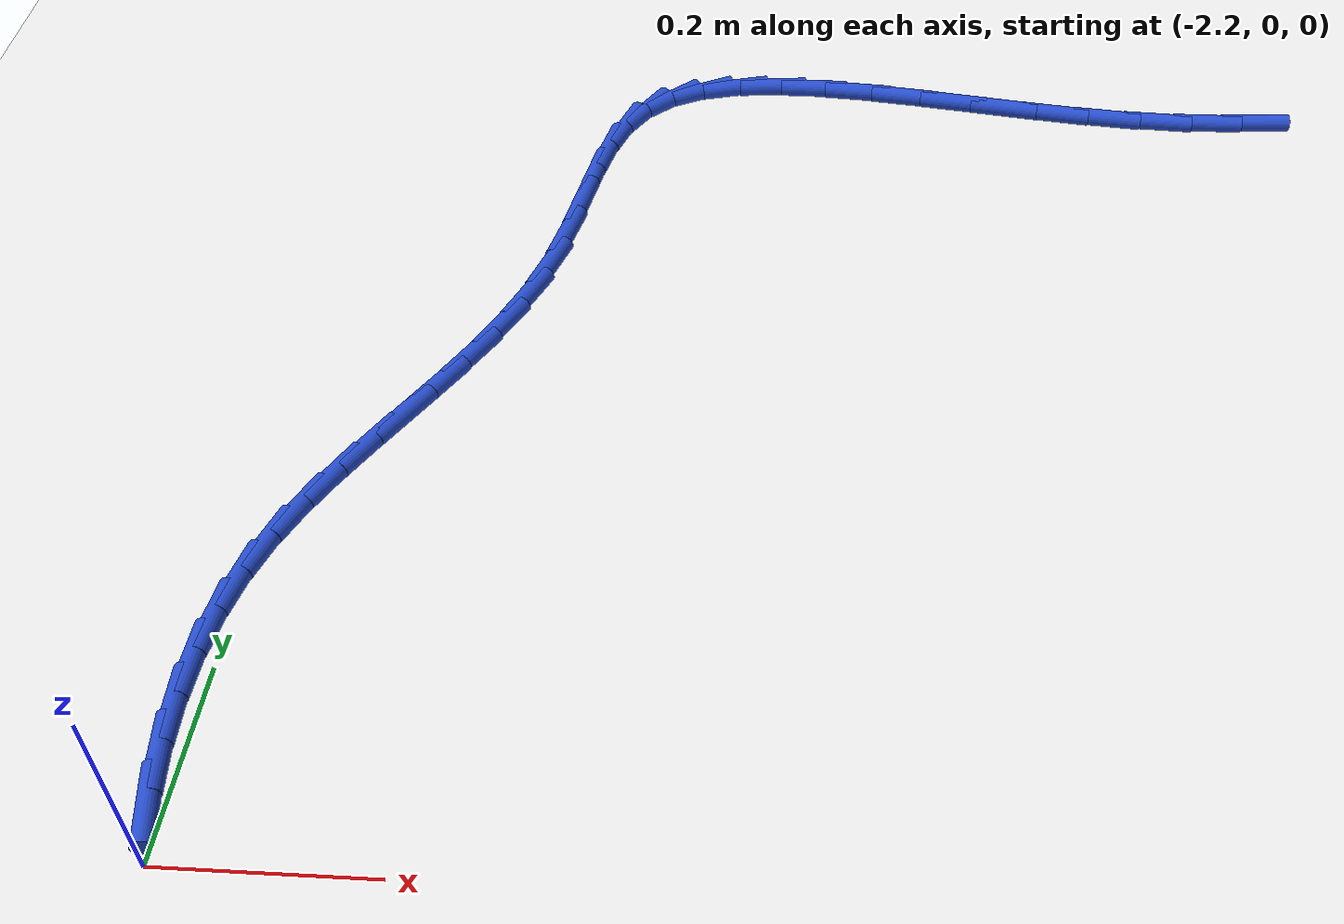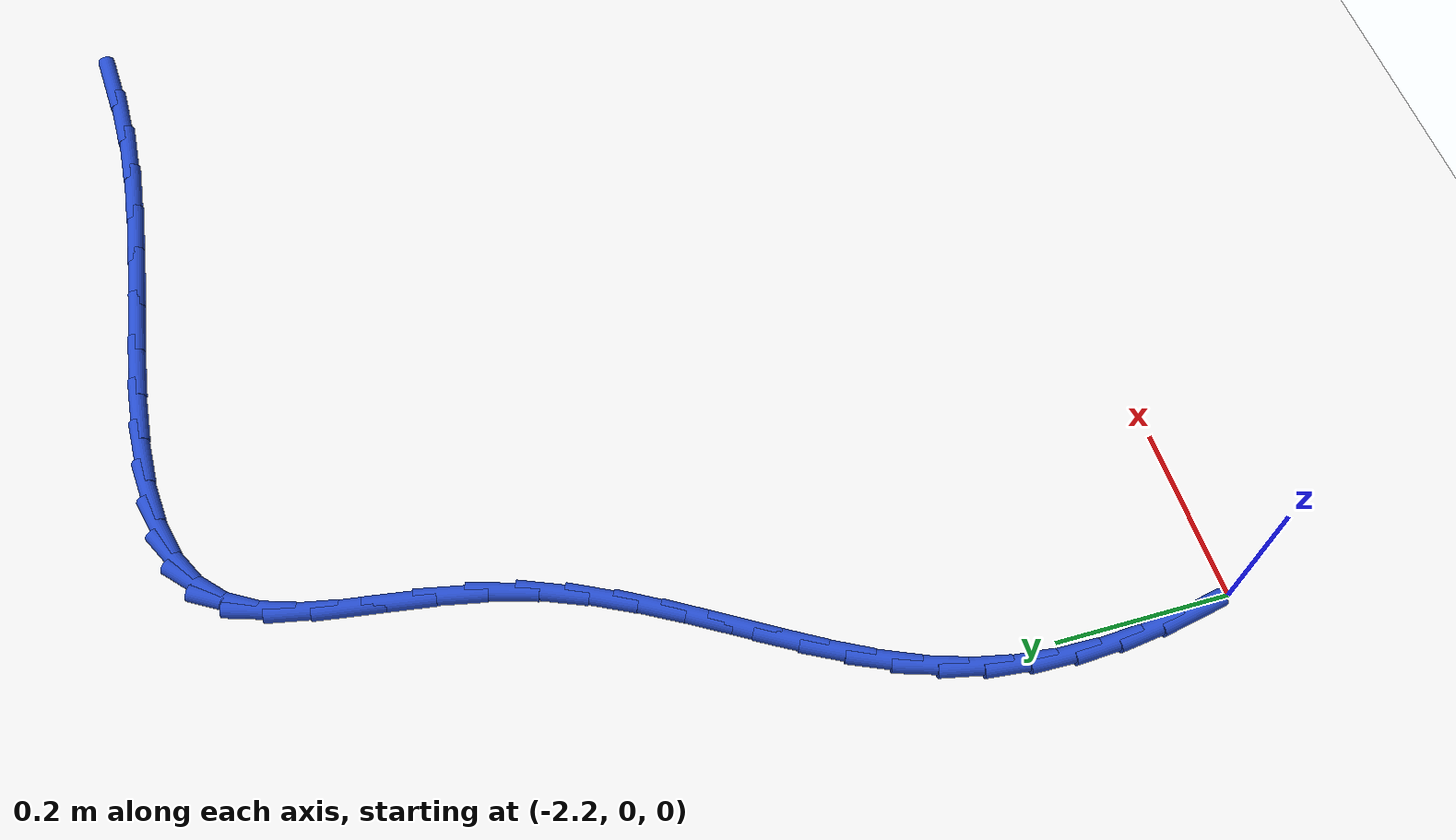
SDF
<sdf version="1.6">
 <world name="default">
  <model name="ground_plane">
   <static>1</static>
   <link name="link">
    <collision name="collision">
     <geometry><plane><normal>0 0 1</normal><size>100 100</size></plane></geometry>
     <surface><friction><ode><mu>100</mu><mu2>50</mu2></ode></friction></surface>
    </collision>
    <visual name="visual">
     <cast_shadows>0</cast_shadows>
     <geometry><plane><normal>0 0 1</normal><size>100 100</size></plane></geometry>
     <material>
      <script><uri>file://media/materials/scripts/gazebo.material</uri><name>Gazebo/WhiteGlow</name></script>
     </material>
    </visual>
   </link>
  </model>
  <model name="line">
   <link name="link_35">
    <pose>-1.183467874514601 1.0608266641390838 0.01 0 1.57 0.07121172890424289</pose>
    <collision name="collision">
     <geometry><cylinder><radius>0.01</radius><length>0.08</length></cylinder></geometry>
    </collision>
    <visual name="visual">
     <material>
      <script><name>Gazebo/Blue</name><uri>file://media/materials/scripts/gazebo.material</uri></script>
     </material>
     <geometry><cylinder><radius>0.01</radius><length>0.08</length></cylinder></geometry>
    </visual>
   </link>
   <link name="link_36">
    <pose>-1.2406983604151853 1.0567442792165291 0.01 0 1.57 0.01288337713004159</pose>
    <collision name="collision">
     <geometry><cylinder><radius>0.01</radius><length>0.08</length></cylinder></geometry>
    </collision>
    <visual name="visual">
     <material>
      <script><name>Gazebo/Blue</name><uri>file://media/materials/scripts/gazebo.material</uri></script>
     </material>
     <geometry><cylinder><radius>0.01</radius><length>0.08</length></cylinder></geometry>
    </visual>
   </link>
   <link name="link_37">
    <pose>-1.299802297958043 1.0559827787671894 0.01 0 1.57 -0.050339240659916615</pose>
    <collision name="collision">
     <geometry><cylinder><radius>0.01</radius><length>0.08</length></cylinder></geometry>
    </collision>
    <visual name="visual">
     <material>
      <script><name>Gazebo/Blue</name><uri>file://media/materials/scripts/gazebo.material</uri></script>
     </material>
     <geometry><cylinder><radius>0.01</radius><length>0.08</length></cylinder></geometry>
    </visual>
   </link>
   <link name="link_38">
    <pose>-1.360506339075548 1.0590411578893697 0.01 0 1.57 -0.09579042090000613</pose>
    <collision name="collision">
     <geometry><cylinder><radius>0.01</radius><length>0.08</length></cylinder></geometry>
    </collision>
    <visual name="visual">
     <material>
      <script><name>Gazebo/Blue</name><uri>file://media/materials/scripts/gazebo.material</uri></script>
     </material>
     <geometry><cylinder><radius>0.01</radius><length>0.08</length></cylinder></geometry>
    </visual>
   </link>
   <link name="link_39">
    <pose>-1.4220820003503705 1.0649576235908578 0.01 0 1.57 -0.12387242446322284</pose>
    <collision name="collision">
     <geometry><cylinder><radius>0.01</radius><length>0.08</length></cylinder></geometry>
    </collision>
    <visual name="visual">
     <material>
      <script><name>Gazebo/Blue</name><uri>file://media/materials/scripts/gazebo.material</uri></script>
     </material>
     <geometry><cylinder><radius>0.01</radius><length>0.08</length></cylinder></geometry>
    </visual>
   </link>
   <link name="link_40">
    <pose>-1.4837592572646294 1.0726370538708583 0.01 0 1.57 -0.13597644317732396</pose>
    <collision name="collision">
     <geometry><cylinder><radius>0.01</radius><length>0.08</length></cylinder></geometry>
    </collision>
    <visual name="visual">
     <material>
      <script><name>Gazebo/Blue</name><uri>file://media/materials/scripts/gazebo.material</uri></script>
     </material>
     <geometry><cylinder><radius>0.01</radius><length>0.08</length></cylinder></geometry>
    </visual>
   </link>
   <link name="link_41">
    <pose>-1.5447680853004475 1.080984326728577 0.01 0 1.57 -0.13217672540186018</pose>
    <collision name="collision">
     <geometry><cylinder><radius>0.01</radius><length>0.08</length></cylinder></geometry>
    </collision>
    <visual name="visual">
     <material>
      <script><name>Gazebo/Blue</name><uri>file://media/materials/scripts/gazebo.material</uri></script>
     </material>
     <geometry><cylinder><radius>0.01</radius><length>0.08</length></cylinder></geometry>
    </visual>
   </link>
   <link name="link_42">
    <pose>-1.604338459939943 1.088904320163218 0.01 0 1.57 -0.11107132129537188</pose>
    <collision name="collision">
     <geometry><cylinder><radius>0.01</radius><length>0.08</length></cylinder></geometry>
    </collision>
    <visual name="visual">
     <material>
      <script><name>Gazebo/Blue</name><uri>file://media/materials/scripts/gazebo.material</uri></script>
     </material>
     <geometry><cylinder><radius>0.01</radius><length>0.08</length></cylinder></geometry>
    </visual>
   </link>
   <link name="link_43">
    <pose>-1.6617003566652382 1.0953019121739862 0.01 0 1.57 -0.069396157308647</pose>
    <collision name="collision">
     <geometry><cylinder><radius>0.01</radius><length>0.08</length></cylinder></geometry>
    </collision>
    <visual name="visual">
     <material>
      <script><name>Gazebo/Blue</name><uri>file://media/materials/scripts/gazebo.material</uri></script>
     </material>
     <geometry><cylinder><radius>0.01</radius><length>0.08</length></cylinder></geometry>
    </visual>
   </link>
   <link name="link_44">
    <pose>-1.7160837509584534 1.099081980760087 0.01 0 1.57 -0.0013315551975847824</pose>
    <collision name="collision">
     <geometry><cylinder><radius>0.01</radius><length>0.08</length></cylinder></geometry>
    </collision>
    <visual name="visual">
     <material>
      <script><name>Gazebo/Blue</name><uri>file://media/materials/scripts/gazebo.material</uri></script>
     </material>
     <geometry><cylinder><radius>0.01</radius><length>0.08</length></cylinder></geometry>
    </visual>
   </link>
   <link name="link_45">
    <pose>-1.7667186183017092 1.0991494039207248 0.01 0 1.57 0.10243129217494552</pose>
    <collision name="collision">
     <geometry><cylinder><radius>0.01</radius><length>0.08</length></cylinder></geometry>
    </collision>
    <visual name="visual">
     <material>
      <script><name>Gazebo/Blue</name><uri>file://media/materials/scripts/gazebo.material</uri></script>
     </material>
     <geometry><cylinder><radius>0.01</radius><length>0.08</length></cylinder></geometry>
    </visual>
   </link>
   <link name="link_46">
    <pose>-1.8128349341771264 1.0944090596551046 0.01 0 1.57 0.2550108233182628</pose>
    <collision name="collision">
     <geometry><cylinder><radius>0.01</radius><length>0.08</length></cylinder></geometry>
    </collision>
    <visual name="visual">
     <material>
      <script><name>Gazebo/Blue</name><uri>file://media/materials/scripts/gazebo.material</uri></script>
     </material>
     <geometry><cylinder><radius>0.01</radius><length>0.08</length></cylinder></geometry>
    </visual>
   </link>
   <link name="link_47">
    <pose>-1.8536626740668247 1.0837658259624317 0.01 0 1.57 0.46953597474189485</pose>
    <collision name="collision">
     <geometry><cylinder><radius>0.01</radius><length>0.08</length></cylinder></geometry>
    </collision>
    <visual name="visual">
     <material>
      <script><name>Gazebo/Blue</name><uri>file://media/materials/scripts/gazebo.material</uri></script>
     </material>
     <geometry><cylinder><radius>0.01</radius><length>0.08</length></cylinder></geometry>
    </visual>
   </link>
   <link name="link_48">
    <pose>-1.8884318134529265 1.0661245808419104 0.01 0 1.57 0.7443194646886515</pose>
    <collision name="collision">
     <geometry><cylinder><radius>0.01</radius><length>0.08</length></cylinder></geometry>
    </collision>
    <visual name="visual">
     <material>
      <script><name>Gazebo/Blue</name><uri>file://media/materials/scripts/gazebo.material</uri></script>
     </material>
     <geometry><cylinder><radius>0.01</radius><length>0.08</length></cylinder></geometry>
    </visual>
   </link>
   <link name="link_49">
    <pose>-1.9163723278175506 1.0403902022927458 0.01 0 1.57 1.0400190390318254</pose>
    <collision name="collision">
     <geometry><cylinder><radius>0.01</radius><length>0.08</length></cylinder></geometry>
    </collision>
    <visual name="visual">
     <material>
      <script><name>Gazebo/Blue</name><uri>file://media/materials/scripts/gazebo.material</uri></script>
     </material>
     <geometry><cylinder><radius>0.01</radius><length>0.08</length></cylinder></geometry>
    </visual>
   </link>
   <link name="link_50">
    <pose>-1.9368100422857033 1.0055706947925813 0.01 0 1.57 1.2594655329003375</pose>
    <collision name="collision">
     <geometry><cylinder><radius>0.01</radius><length>0.08</length></cylinder></geometry>
    </collision>
    <visual name="visual">
     <material>
      <script><name>Gazebo/Blue</name><uri>file://media/materials/scripts/gazebo.material</uri></script>
     </material>
     <geometry><cylinder><radius>0.01</radius><length>0.08</length></cylinder></geometry>
    </visual>
   </link>
   <link name="link_51">
    <pose>-1.9506951701000377 0.9624217733075872 0.01 0 1.57 1.3775930186529721</pose>
    <collision name="collision">
     <geometry><cylinder><radius>0.01</radius><length>0.08</length></cylinder></geometry>
    </collision>
    <visual name="visual">
     <material>
      <script><name>Gazebo/Blue</name><uri>file://media/materials/scripts/gazebo.material</uri></script>
     </material>
     <geometry><cylinder><radius>0.01</radius><length>0.08</length></cylinder></geometry>
    </visual>
   </link>
   <link name="link_52">
    <pose>-1.9603334059727455 0.9131575414461399 0.01 0 1.57 1.4261354426066433</pose>
    <collision name="collision">
     <geometry><cylinder><radius>0.01</radius><length>0.08</length></cylinder></geometry>
    </collision>
    <visual name="visual">
     <material>
      <script><name>Gazebo/Blue</name><uri>file://media/materials/scripts/gazebo.material</uri></script>
     </material>
     <geometry><cylinder><radius>0.01</radius><length>0.08</length></cylinder></geometry>
    </visual>
   </link>
   <link name="link_53">
    <pose>-1.9680719601568946 0.8600367701873263 0.01 0 1.57 1.4222942179313471</pose>
    <collision name="collision">
     <geometry><cylinder><radius>0.01</radius><length>0.08</length></cylinder></geometry>
    </collision>
    <visual name="visual">
     <material>
      <script><name>Gazebo/Blue</name><uri>file://media/materials/scripts/gazebo.material</uri></script>
     </material>
     <geometry><cylinder><radius>0.01</radius><length>0.08</length></cylinder></geometry>
    </visual>
   </link>
   <link name="link_54">
    <pose>-1.9762580429055523 0.8053182305102313 0.01 0 1.57 1.3703909448817742</pose>
    <collision name="collision">
     <geometry><cylinder><radius>0.01</radius><length>0.08</length></cylinder></geometry>
    </collision>
    <visual name="visual">
     <material>
      <script><name>Gazebo/Blue</name><uri>file://media/materials/scripts/gazebo.material</uri></script>
     </material>
     <geometry><cylinder><radius>0.01</radius><length>0.08</length></cylinder></geometry>
    </visual>
   </link>
   <link name="link_55">
    <pose>-1.9872388644717864 0.7512606933939399 0.01 0 1.57 1.2761711292891407</pose>
    <collision name="collision">
     <geometry><cylinder><radius>0.01</radius><length>0.08</length></cylinder></geometry>
    </collision>
    <visual name="visual">
     <material>
      <script><name>Gazebo/Blue</name><uri>file://media/materials/scripts/gazebo.material</uri></script>
     </material>
     <geometry><cylinder><radius>0.01</radius><length>0.08</length></cylinder></geometry>
    </visual>
   </link>
   <link name="link_56">
    <pose>-2.0028746647941884 0.6997350811756554 0.01 0 1.57 1.185138527638121</pose>
    <collision name="collision">
     <geometry><cylinder><radius>0.01</radius><length>0.08</length></cylinder></geometry>
    </collision>
    <visual name="visual">
     <material>
      <script><name>Gazebo/Blue</name><uri>file://media/materials/scripts/gazebo.material</uri></script>
     </material>
     <geometry><cylinder><radius>0.01</radius><length>0.08</length></cylinder></geometry>
    </visual>
   </link>
   <link name="link_57">
    <pose>-2.022743793394732 0.6507948992521517 0.01 0 1.57 1.1140662660246965</pose>
    <collision name="collision">
     <geometry><cylinder><radius>0.01</radius><length>0.08</length></cylinder></geometry>
    </collision>
    <visual name="visual">
     <material>
      <script><name>Gazebo/Blue</name><uri>file://media/materials/scripts/gazebo.material</uri></script>
     </material>
     <geometry><cylinder><radius>0.01</radius><length>0.08</length></cylinder></geometry>
    </visual>
   </link>
   <link name="link_58">
    <pose>-2.0457567844491593 0.6039617699313085 0.01 0 1.57 1.0644811503852387</pose>
    <collision name="collision">
     <geometry><cylinder><radius>0.01</radius><length>0.08</length></cylinder></geometry>
    </collision>
    <visual name="visual">
     <material>
      <script><name>Gazebo/Blue</name><uri>file://media/materials/scripts/gazebo.material</uri></script>
     </material>
     <geometry><cylinder><radius>0.01</radius><length>0.08</length></cylinder></geometry>
    </visual>
   </link>
   <link name="link_59">
    <pose>-2.0708240884428486 0.5587572488656165 0.01 0 1.57 1.037089022154803</pose>
    <collision name="collision">
     <geometry><cylinder><radius>0.01</radius><length>0.08</length></cylinder></geometry>
    </collision>
    <visual name="visual">
     <material>
      <script><name>Gazebo/Blue</name><uri>file://media/materials/scripts/gazebo.material</uri></script>
     </material>
     <geometry><cylinder><radius>0.01</radius><length>0.08</length></cylinder></geometry>
    </visual>
   </link>
   <link name="link_60">
    <pose>-2.0968561558611767 0.5147028917075684 0.01 0 1.57 1.0324522934838463</pose>
    <collision name="collision">
     <geometry><cylinder><radius>0.01</radius><length>0.08</length></cylinder></geometry>
    </collision>
    <visual name="visual">
     <material>
      <script><name>Gazebo/Blue</name><uri>file://media/materials/scripts/gazebo.material</uri></script>
     </material>
     <geometry><cylinder><radius>0.01</radius><length>0.08</length></cylinder></geometry>
    </visual>
   </link>
   <link name="link_61">
    <pose>-2.122763437189521 0.4713202541096551 0.01 0 1.57 1.0514179234783891</pose>
    <collision name="collision">
     <geometry><cylinder><radius>0.01</radius><length>0.08</length></cylinder></geometry>
    </collision>
    <visual name="visual">
     <material>
      <script><name>Gazebo/Blue</name><uri>file://media/materials/scripts/gazebo.material</uri></script>
     </material>
     <geometry><cylinder><radius>0.01</radius><length>0.08</length></cylinder></geometry>
    </visual>
   </link>
   <link name="link_62">
    <pose>-2.1474563829132585 0.4281308917243688 0.01 0 1.57 1.0952267286158148</pose>
    <collision name="collision">
     <geometry><cylinder><radius>0.01</radius><length>0.08</length></cylinder></geometry>
    </collision>
    <visual name="visual">
     <material>
      <script><name>Gazebo/Blue</name><uri>file://media/materials/scripts/gazebo.material</uri></script>
     </material>
     <geometry><cylinder><radius>0.01</radius><length>0.08</length></cylinder></geometry>
    </visual>
   </link>
   <link name="link_63">
    <pose>-2.169845443517767 0.38465636020420046 0.01 0 1.57 1.165209206979345</pose>
    <collision name="collision">
     <geometry><cylinder><radius>0.01</radius><length>0.08</length></cylinder></geometry>
    </collision>
    <visual name="visual">
     <material>
      <script><name>Gazebo/Blue</name><uri>file://media/materials/scripts/gazebo.material</uri></script>
     </material>
     <geometry><cylinder><radius>0.01</radius><length>0.08</length></cylinder></geometry>
    </visual>
   </link>
   <link name="link_64">
    <pose>-2.188841069488423 0.34041821520164256 0.01 0 1.57 1.261082990423523</pose>
    <collision name="collision">
     <geometry><cylinder><radius>0.01</radius><length>0.08</length></cylinder></geometry>
    </collision>
    <visual name="visual">
     <material>
      <script><name>Gazebo/Blue</name><uri>file://media/materials/scripts/gazebo.material</uri></script>
     </material>
     <geometry><cylinder><radius>0.01</radius><length>0.08</length></cylinder></geometry>
    </visual>
   </link>
   <link name="link_65">
    <pose>-2.2033898366610196 0.29495494537095934 0.01 0 1.57 1.365408402615376</pose>
    <collision name="collision">
     <geometry><cylinder><radius>0.01</radius><length>0.08</length></cylinder></geometry>
    </collision>
    <visual name="visual">
     <material>
      <script><name>Gazebo/Blue</name><uri>file://media/materials/scripts/gazebo.material</uri></script>
     </material>
     <geometry><cylinder><radius>0.01</radius><length>0.08</length></cylinder></geometry>
    </visual>
   </link>
   <link name="link_66">
    <pose>-2.213143506373033 0.24813558030825936 0.01 0 1.57 1.461825110445225</pose>
    <collision name="collision">
     <geometry><cylinder><radius>0.01</radius><length>0.08</length></cylinder></geometry>
    </collision>
    <visual name="visual">
     <material>
      <script><name>Gazebo/Blue</name><uri>file://media/materials/scripts/gazebo.material</uri></script>
     </material>
     <geometry><cylinder><radius>0.01</radius><length>0.08</length></cylinder></geometry>
    </visual>
   </link>
   <link name="link_67">
    <pose>-2.2183955451956487 0.20012993550475164 0.01 0 1.57 1.5490237329471601</pose>
    <collision name="collision">
     <geometry><cylinder><radius>0.01</radius><length>0.08</length></cylinder></geometry>
    </collision>
    <visual name="visual">
     <material>
      <script><name>Gazebo/Blue</name><uri>file://media/materials/scripts/gazebo.material</uri></script>
     </material>
     <geometry><cylinder><radius>0.01</radius><length>0.08</length></cylinder></geometry>
    </visual>
   </link>
   <link name="link_68">
    <pose>-2.2194628135707424 0.1511187918388121 0.01 0 1.57 -1.5146580592736267</pose>
    <collision name="collision">
     <geometry><cylinder><radius>0.01</radius><length>0.08</length></cylinder></geometry>
    </collision>
    <visual name="visual">
     <material>
      <script><name>Gazebo/Blue</name><uri>file://media/materials/scripts/gazebo.material</uri></script>
     </material>
     <geometry><cylinder><radius>0.01</radius><length>0.08</length></cylinder></geometry>
    </visual>
   </link>
   <link name="link_69">
    <pose>-2.216662171940189 0.10128293018881818 0.01 0 1.57 -1.4456277320648403</pose>
    <collision name="collision">
     <geometry><cylinder><radius>0.01</radius><length>0.08</length></cylinder></geometry>
    </collision>
    <visual name="visual">
     <material>
      <script><name>Gazebo/Blue</name><uri>file://media/materials/scripts/gazebo.material</uri></script>
     </material>
     <geometry><cylinder><radius>0.01</radius><length>0.08</length></cylinder></geometry>
    </visual>
   </link>
   <link name="link_70">
    <pose>-2.210310480745865 0.050803131433145764 0.01 0 1.57 -1.384802262778311</pose>
    <collision name="collision">
     <geometry><cylinder><radius>0.01</radius><length>0.08</length></cylinder></geometry>
    </collision>
    <visual name="visual">
     <material>
      <script><name>Gazebo/Blue</name><uri>file://media/materials/scripts/gazebo.material</uri></script>
     </material>
     <geometry><cylinder><radius>0.01</radius><length>0.08</length></cylinder></geometry>
    </visual>
   </link>
  </model>
 </world>
</sdf>
